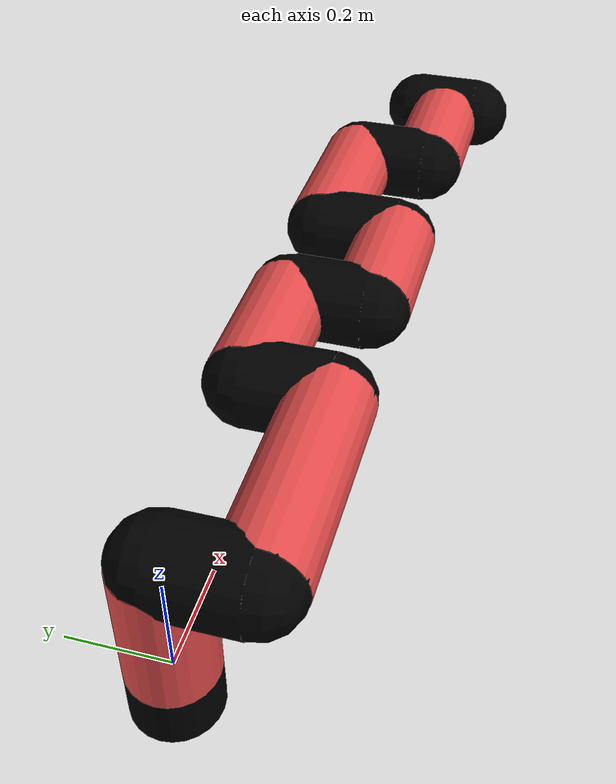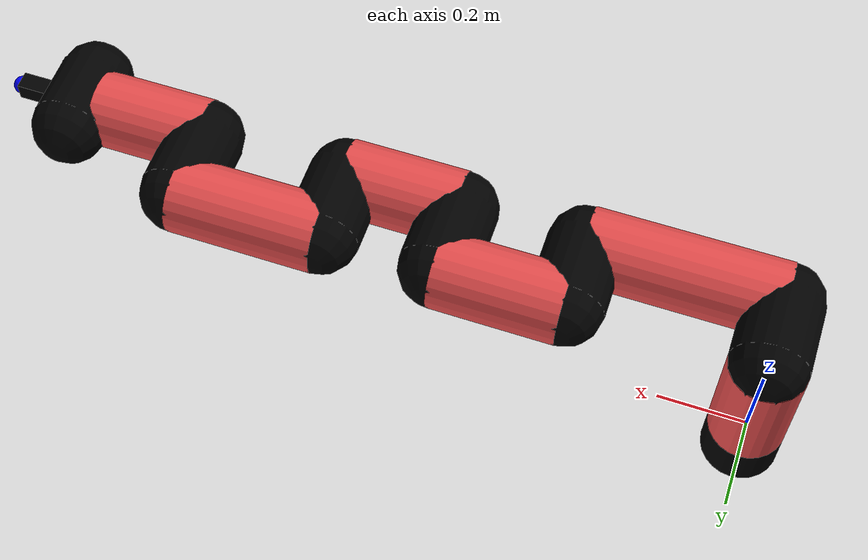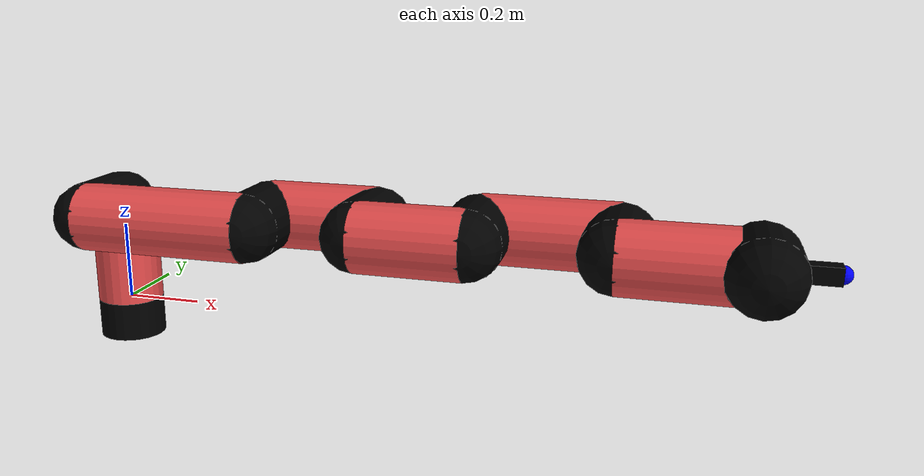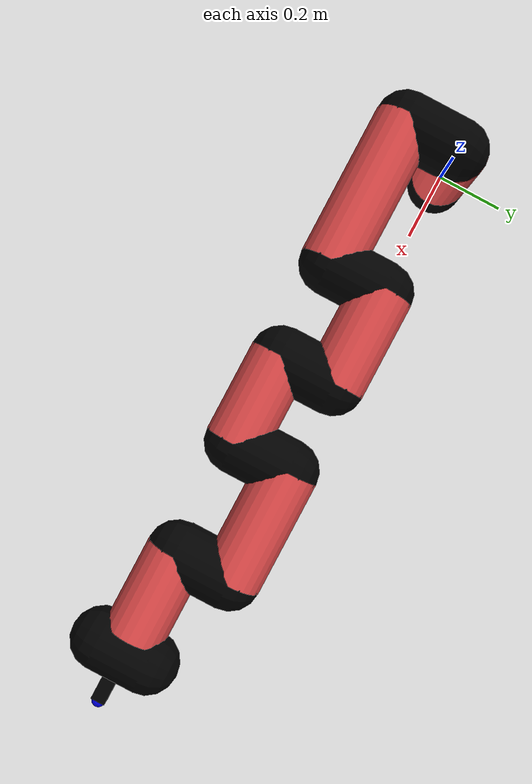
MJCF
<mujoco model="manipulator">
		<compiler angle="degree" coordinate="local" inertiafromgeom="auto" meshdir="meshes/"/>
		<option gravity="0 0 0" integrator="RK4" iterations="30" timestep="0.01"/>

		<default>
		<joint armature="1" limited="true" stiffness="10" damping="15" frictionloss="5.0"/>
		<geom conaffinity="1" condim="3" contype="1" friction=".5 .1 .1" margin="0.002"/>
		<motor ctrllimited="true"/>
		<position ctrllimited="true"/>
		</default>

		<asset>
		<texture builtin="gradient" height="100" rgb1="1.0 1.0 1.0" rgb2="1.0 1.0 1.0" type="skybox" width="100"/>
		<texture builtin="flat" height="32" name="arm_tex" rgb1="0.9 0.3 0.3" type="2d" width="32"/>
		<texture builtin="flat" height="32" name="gripper_tex" rgb1="0.0 0.0 0.0" type="cube" width="32"/>

		<material name="arm_mat" shininess="0.1" specular="0.1" texture="arm_tex"/>
		<material name="gripper_mat" shininess="1" specular="1" texture="gripper_tex"/>
		</asset>

		<worldbody>
		<light cutoff="45" diffuse=".8 .8 .8" dir="0 0.16 -1" directional="false" name="light" pos="0 -2.0 8.0" specular="0.3 0.3 0.3"/>

		<body name="base_link" pos="0 0 -0.1">
		<geom fromto="0 0 0 0 0 0.1" material="arm_mat" name="base_link" rgba="0.0 0.0 0.0 1" size="0.085" type="cylinder"/>
		</body>

		<body name="l1" pos="0 0 0">
<geom fromto="0 0 0 0 0 0.26" material="arm_mat" name="l1" rgba="0.9 0.3 0.3 1" size="0.085" type="cylinder"/>
<geom fromto="0 0 0.26 0 -0.16 0.26" material="arm_mat" name="l1_ex" rgba="0.0 0.0 0.0 1" size="0.085" type="capsule"/>
<joint axis="0 0 1" name="j1" pos="0 0 0" range="-90 90" damping="35.28" frictionloss="10.59"/>

<body name="l2" pos="0 -0.16 0.26">
<geom fromto="0 0 0 0.43 0 0" material="arm_mat" name="l2" rgba="0.9 0.3 0.3 1" size="0.085" type="cylinder"/>
<geom fromto="0.43 0 0 0.43 0.16 0" material="arm_mat" name="l2_ex" rgba="0.0 0.0 0.0 1" size="0.085" type="capsule"/>
<joint axis="0.0 1.0 0.0" name="j2" pos="0 0 0" range="-90 60" damping="23.86" frictionloss="12.01"/>

<body name="l3" pos="0.43 0.16 0">
<geom fromto="0 0 0 0.28 0 0" material="arm_mat" name="l3" rgba="0.9 0.3 0.3 1" size="0.085" type="cylinder"/>
<geom fromto="0.28 0 0 0.28 -0.16 0" material="arm_mat" name="l3_ex" rgba="0.0 0.0 0.0 1" size="0.085" type="capsule"/>
<joint axis="0.0 1.0 0.0" name="j3" pos="0 0 0" range="-30 60" damping="24.33" frictionloss="11.52"/>

<body name="l4" pos="0.28 -0.16 0">
<geom fromto="0 0 0 0.26 0 0" material="arm_mat" name="l4" rgba="0.9 0.3 0.3 1" size="0.085" type="cylinder"/>
<geom fromto="0.26 0 0 0.26 0.16 0" material="arm_mat" name="l4_ex" rgba="0.0 0.0 0.0 1" size="0.085" type="capsule"/>
<joint axis="0.0 1.0 0.0" name="j4" pos="0 0 0" range="-30 60" damping="34.43" frictionloss="10.18"/>

<body name="l5" pos="0.26 0.16 0">
<geom fromto="0 0 0 0.33 0 0" material="arm_mat" name="l5" rgba="0.9 0.3 0.3 1" size="0.085" type="cylinder"/>
<geom fromto="0.33 0 0 0.33 -0.16 0" material="arm_mat" name="l5_ex" rgba="0.0 0.0 0.0 1" size="0.085" type="capsule"/>
<joint axis="0.0 1.0 0.0" name="j5" pos="0 0 0" range="-30 60" damping="28.97" frictionloss="9.28"/>

<body name="l6" pos="0.33 -0.16 0">
<geom fromto="0 0 0 0.25 0 0" material="arm_mat" name="l6" rgba="0.9 0.3 0.3 1" size="0.085" type="cylinder"/>
<joint axis="0.0 1.0 0.0" name="j6" pos="0 0 0" range="-30 60" damping="24.02" frictionloss="11.79"/>

<body name="gripper" pos="0.25 0 0">
<geom fromto="0.05 -0.07 0 0.05 0.07 0" material="gripper_mat" name="gripper" rgba="0.0 0.0 0.0 1" size="0.085" type="capsule"/><joint axis="1 0 0" name="j7" pos="0 0 0" range="-90 90" damping="15" frictionloss="5.0"/><body name="finger" pos="0.1 0 0">
<geom fromto="0 0.0 0 0.1 0.0 0" material="gripper_mat" name="finger" rgba="0.0 0.0 0.0 1" size="0.020 0.06 0.06" type="box"/>
</body>
<site name="current" pos="0.2 0. 0.0" rgba="0. 0. 1.0 1" size="0.02" type="sphere"/>
</body>
</body>
</body>
</body>
</body>
</body>
</body>
</worldbody>
<actuator>
<motor ctrllimited="true" ctrlrange="-1.0 1.0" joint="j1" gear="67.33"/>
<motor ctrllimited="true" ctrlrange="-1.0 1.0" joint="j2" gear="73.22"/>
<motor ctrllimited="true" ctrlrange="-1.0 1.0" joint="j3" gear="82.25"/>
<motor ctrllimited="true" ctrlrange="-1.0 1.0" joint="j4" gear="91.71"/>
<motor ctrllimited="true" ctrlrange="-1.0 1.0" joint="j5" gear="95.71"/>
<motor ctrllimited="true" ctrlrange="-1.0 1.0" joint="j6" gear="87.5"/>
<motor ctrllimited="true" ctrlrange="-1.0 1.0" joint="j7" gear="80"/>
</actuator>
</mujoco>
